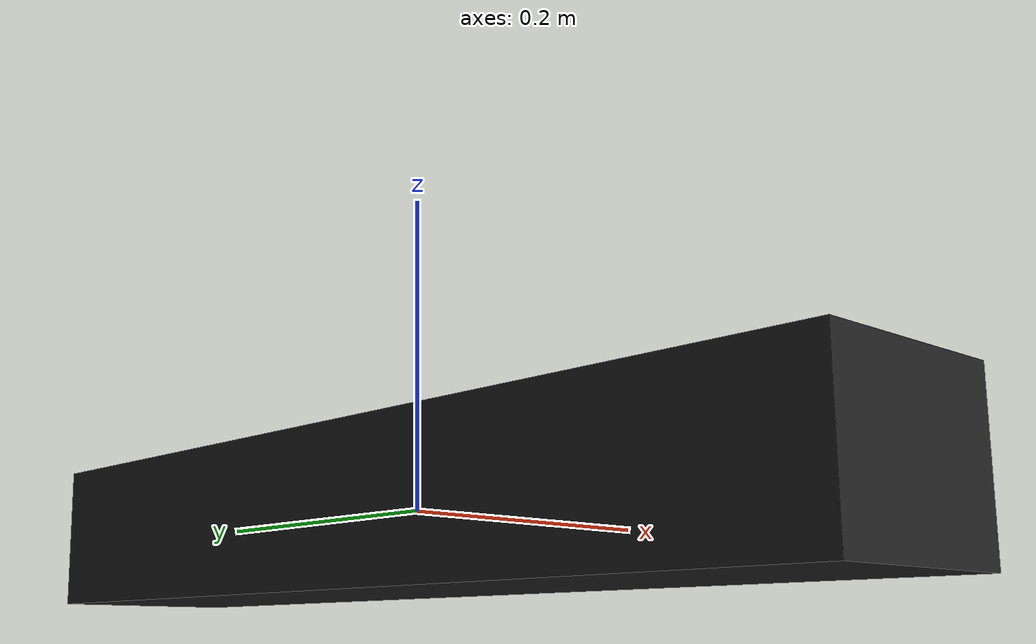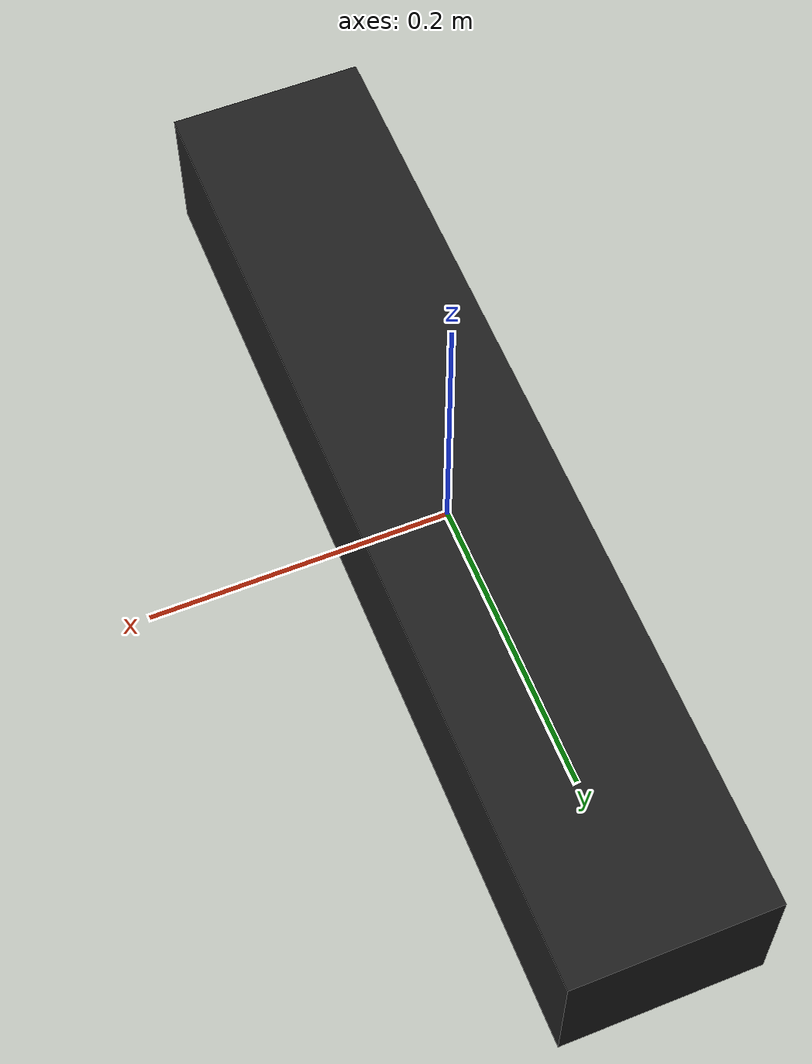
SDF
<?xml version="1.0"?>

<sdf version="1.5">
    <model name="conveyor_belt">
        <static>true</static>
        <link name="link">
            <collision name="collision">
                <geometry>
                    <box>
                        <size>0.133 0.66 0.1</size>
                    </box>
                </geometry>
            </collision>
            <visual name="visual">
                <cast_shadows>true</cast_shadows>
                <geometry>
                    <box>
                        <size>0.133 0.66 0.1</size>
                    </box>
                </geometry>
                <material>
                    <script>
                        <uri>file://media/materials/scripts/gazebo.material</uri>
                        <name>Gazebo/Black</name>
                    </script>
                </material>
            </visual>
        </link>
    </model>
</sdf>
